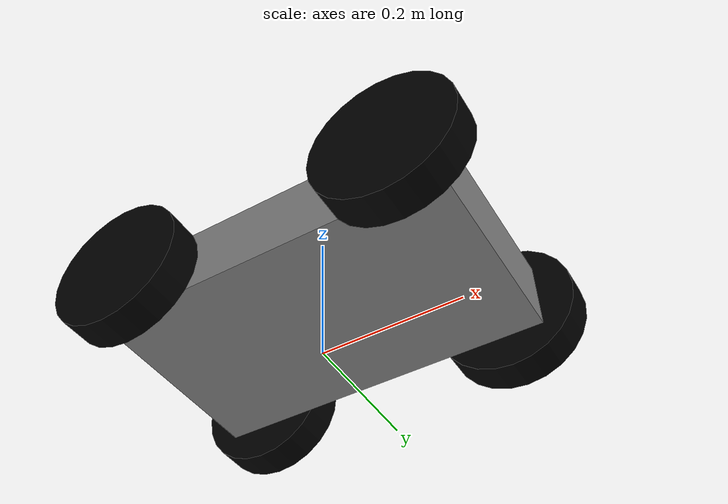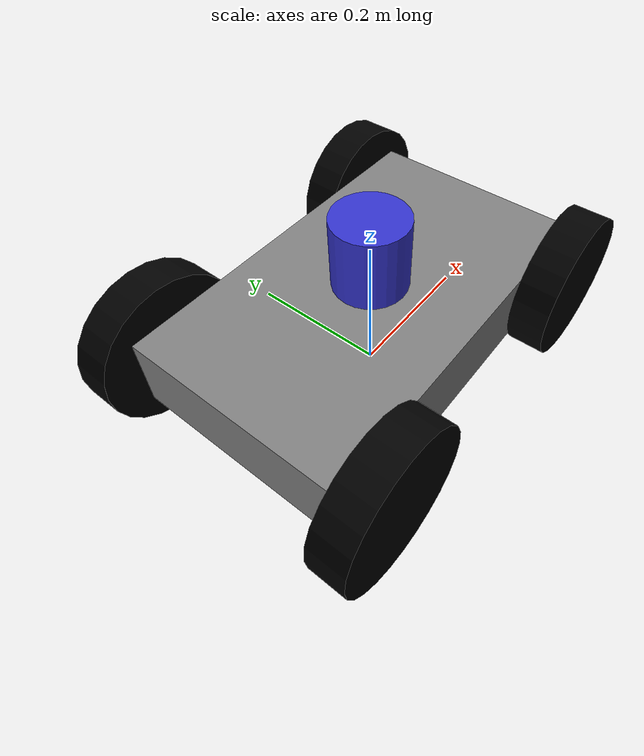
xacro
<?xml version="1.0"?>
<robot xmlns:xacro="http://ros.org/wiki/xacro" name="nav4wbot">

  <!-- Properties for dimensions -->
  <xacro:property name="PI" value="3.14159" />
  <xacro:property name="wheel_radius" value="0.1" />
  <xacro:property name="wheel_thickness" value="0.05" />
  <xacro:property name="wheel_base" value="0.4" />          <!-- front-back distance(change) -->
  <xacro:property name="track_width" value="0.35" />        <!-- left-right distance(change) -->

  <!-- Macros Definations -->
  <!-- Intertial Macro -->
  <xacro:macro name="default_interial" params="mass">
    <inertial>
      <mass value="${mass}"/>
      <inertia ixx="0.01" ixy="0.0" ixz="0.0"
               iyy="0.01" iyz="0.0"
               izz="0.01"/>
    </inertial>
  </xacro:macro>

  <!--  Wheel Macro  -->
  <xacro:macro name="wheel" params="name x y">
    <link name="${name}">
      <xacro:default_interial mass="1.0"/>
      <visual>
        <geometry>
          <cylinder radius="${wheel_radius}" length="${wheel_thickness}"/>
        </geometry>
        <origin xyz="0 0 0" rpy="${PI/2} 0 0"/>
        <material name="black">
          <color rgba="0 0 0 1"/>
        </material>
      </visual>
      <collision>
        <geometry>
          <cylinder radius="${wheel_radius}" length="${wheel_thickness}"/>
        </geometry>
        <origin xyz="0 0 0" rpy="${PI/2} 0 0"/>
      </collision>
    </link>

    <joint name="${name}_joint" type="continuous">
      <parent link="base_link"/>
      <child link="${name}"/>
      <origin xyz="${x} ${y} ${wheel_radius}" rpy="0 0 0"/>
      <axis xyz="0 1 0"/>
    </joint>
  </xacro:macro>

  <!-- Robot Description -->

  <link name="world"/>

  <!-- Base Link -->
  <link name="base_link">
    <xacro:default_interial mass="10.0"/>
    <visual>
      <geometry>
        <box size="0.5 0.3 0.1"/>
      </geometry>
      <origin xyz="0 0 0.1" rpy="0 0 0"/>
      <material name="grey">
        <color rgba="0.5 0.5 0.5 1.0"/>
      </material>
    </visual>
    <collision>
      <geometry>
        <box size="0.5 0.3 0.1"/>
      </geometry>
      <origin xyz="0 0 0.1" rpy="0 0 0"/>
    </collision>
  </link>

  <joint name="virtual_joint" type="fixed">
    <parent link="world"/>
    <child link="base_link"/>
    <origin xyz="0 0 0" rpy="0 0 0"/>
  </joint>

  <!--  Wheels  -->
  <xacro:wheel name="left_front_wheel"  x="0.2"  y="0.175"/>
  <xacro:wheel name="left_rear_wheel"   x="-0.2" y="0.175"/>
  <xacro:wheel name="right_front_wheel" x="0.2"  y="-0.175"/>
  <xacro:wheel name="right_rear_wheel"  x="-0.2" y="-0.175"/>

  <!-- ============ Lidar Sensor ============ -->
  <link name="lidar_link">
    <xacro:default_interial mass="0.5"/>
    <visual>
      <geometry>
        <cylinder radius="0.05" length="0.1"/>
      </geometry>
      <origin xyz="0 0 0.05" rpy="0 0 0"/>
      <material name="blue">
        <color rgba="0.2 0.2 0.8 1"/>
      </material>
    </visual>
  </link>

  <joint name="lidar_joint" type="fixed">
    <parent link="base_link"/>
    <child link="lidar_link"/>
    <origin xyz="0 0 0.15" rpy="0 0 0"/>
  </joint>

  <!-- Gazebo plugin for Lidar -->
  <gazebo reference="lidar_link">
    <!-- Note my gazebo is ign gazebo, so change the plugin as needed -->
    <plugin name="gazebo_ros_laser" filename="libgazebo_ros_ray_sensor.so"/>
    <sensor type="gpu_ray" name="lidar_sensor">
      <update_rate>10</update_rate>
      <ray>
        <scan>
          <horizontal>
            <samples>720</samples>
            <resolution>1</resolution>
            <min_angle>-1.5708</min_angle>
            <max_angle>1.5708</max_angle>
          </horizontal>
        </scan>
        <range>
          <min>0.12</min>
          <max>10.0</max>
          <resolution>0.01</resolution>
        </range>
      </ray>
    </sensor>
  </gazebo>

  <!-- ============ Diff Drive Plugin ============ -->
  <gazebo>
    <plugin name="diff_drive_controller" filename="libgazebo_ros2_control_differential_drive.so">
      <left_joint>left_front_wheel_joint</left_joint>
      <left_joint>left_rear_wheel_joint</left_joint>
      <right_joint>right_front_wheel_joint</right_joint>
      <right_joint>right_rear_wheel_joint</right_joint>
      <wheel_separation>${wheel_base}</wheel_separation>     <!--see if this is track_width -->
      <wheel_radius>${wheel_radius}</wheel_radius>
      <enable_odometry>true</enable_odometry>
      <odometry_frame>odom</odometry_frame>
      <robot_base_frame>base_link</robot_base_frame>
      <publish_tf>true</publish_tf>
    </plugin>
  </gazebo>

</robot>
